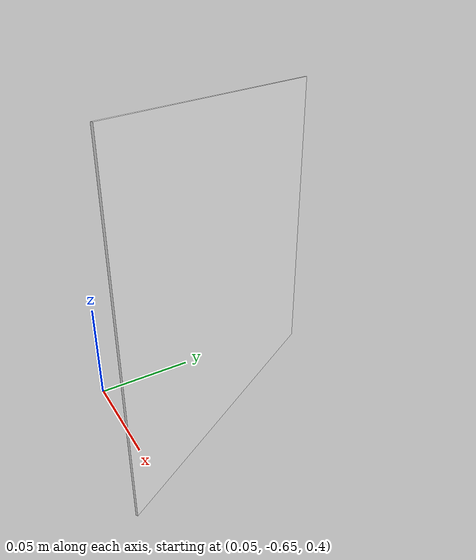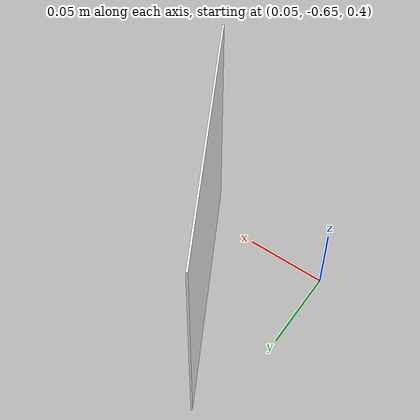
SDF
<?xml version="1.0" ?>
<sdf version="1.4">

  <world name="aruco_world">

    <include>
      <uri>https://fuel.gazebosim.org/1.0/OpenRobotics/models/Sun</uri>
    </include>

    <include>
      <uri>https://fuel.gazebosim.org/1.0/OpenRobotics/models/Ground Plane</uri>
    </include>

    <include>
      <uri>model://arucotag</uri>
      <name>aruco_tag</name>
      <pose> 0.10 -0.6 0.48 0 1.57 0.5</pose>
    </include>

  </world>
</sdf>

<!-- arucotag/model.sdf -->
<sdf version='1.9'>
  <model name='arucotag'>
    <static>true</static>
    <link name='link'>
      <visual name='visual'>
        <geometry>
          <box>
            <size>0.15 0.15 0.001</size>
          </box>
        </geometry>
        <material>
          <diffuse>1 1 1 1</diffuse>
          <specular>0.4 0.4 0.4 1</specular>
          <pbr>
            <metal>
              <albedo_map>model://arucotag/materials/textures/aruco-201.png</albedo_map>
            </metal>
          </pbr>
        </material>
      </visual>
    </link>
  </model>
</sdf>
